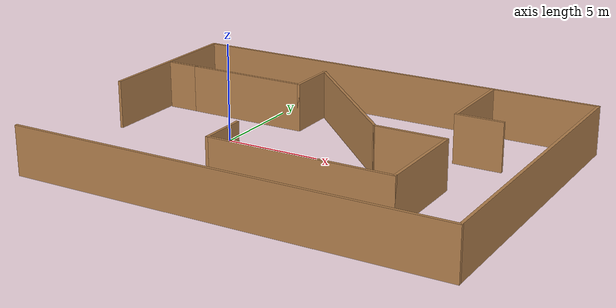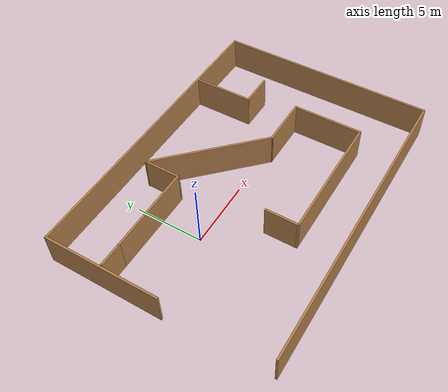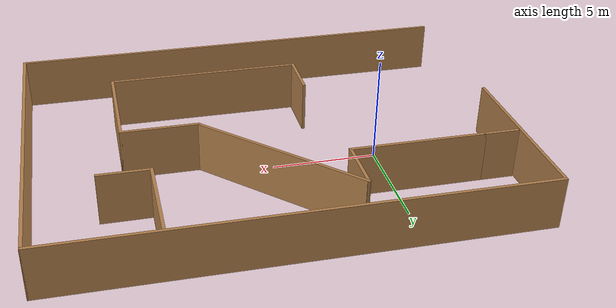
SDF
<?xml version='1.0'?>
<sdf version='1.6'>
  <model name='house'>
    <pose frame=''>5.23176 -0.79496 0 0 -0 0</pose>
    <link name='Wall_0'>
      <collision name='Wall_0_Collision'>
        <geometry>
          <box>
            <size>8.5 0.15 2.5</size>
          </box>
        </geometry>
        <pose frame=''>0 0 1.25 0 -0 0</pose>
      </collision>
      <visual name='Wall_0_Visual'>
        <pose frame=''>0 0 1.25 0 -0 0</pose>
        <geometry>
          <box>
            <size>8.5 0.15 2.5</size>
          </box>
        </geometry>
        <material>
          <script>
            <uri>file://media/materials/scripts/gazebo.material</uri>
            <name>Gazebo/Wood</name>
          </script>
          <ambient>1 1 1 1</ambient>
        </material>
        <meta>
          <layer>0</layer>
        </meta>
      </visual>
      <pose frame=''>-11.175 3.875 0 0 -0 1.5708</pose>
    </link>
    <link name='Wall_1'>
      <collision name='Wall_1_Collision'>
        <geometry>
          <box>
            <size>22.5 0.15 2.5</size>
          </box>
        </geometry>
        <pose frame=''>0 0 1.25 0 -0 0</pose>
      </collision>
      <visual name='Wall_1_Visual'>
        <pose frame=''>0 0 1.25 0 -0 0</pose>
        <geometry>
          <box>
            <size>22.5 0.15 2.5</size>
          </box>
        </geometry>
        <material>
          <script>
            <uri>file://media/materials/scripts/gazebo.material</uri>
            <name>Gazebo/Wood</name>
          </script>
          <ambient>1 1 1 1</ambient>
        </material>
        <meta>
          <layer>0</layer>
        </meta>
      </visual>
      <pose frame=''>0 8.05 0 0 -0 0</pose>
    </link>
    <link name='Wall_10'>
      <collision name='Wall_10_Collision'>
        <geometry>
          <box>
            <size>3.75 0.15 2.5</size>
          </box>
        </geometry>
        <pose frame=''>0 0 1.25 0 -0 0</pose>
      </collision>
      <visual name='Wall_10_Visual'>
        <pose frame=''>0 0 1.25 0 -0 0</pose>
        <geometry>
          <box>
            <size>3.75 0.15 2.5</size>
          </box>
        </geometry>
        <material>
          <script>
            <uri>file://media/materials/scripts/gazebo.material</uri>
            <name>Gazebo/Wood</name>
          </script>
          <ambient>1 1 1 1</ambient>
        </material>
        <meta>
          <layer>0</layer>
        </meta>
      </visual>
      <pose frame=''>5.03222 0.186003 0 0 -0 0</pose>
    </link>
    <link name='Wall_11'>
      <collision name='Wall_11_Collision'>
        <geometry>
          <box>
            <size>5.25 0.15 2.5</size>
          </box>
        </geometry>
        <pose frame=''>0 0 1.25 0 -0 0</pose>
      </collision>
      <visual name='Wall_11_Visual'>
        <pose frame=''>0 0 1.25 0 -0 0</pose>
        <geometry>
          <box>
            <size>5.25 0.15 2.5</size>
          </box>
        </geometry>
        <material>
          <script>
            <uri>file://media/materials/scripts/gazebo.material</uri>
            <name>Gazebo/Wood</name>
          </script>
          <ambient>1 1 1 1</ambient>
        </material>
        <meta>
          <layer>0</layer>
        </meta>
      </visual>
      <pose frame=''>6.83223 -2.364 0 0 0 -1.5708</pose>
    </link>
    <link name='Wall_12'>
      <collision name='Wall_12_Collision'>
        <geometry>
          <box>
            <size>9.5 0.15 2.5</size>
          </box>
        </geometry>
        <pose frame=''>0 0 1.25 0 -0 0</pose>
      </collision>
      <visual name='Wall_12_Visual'>
        <pose frame=''>0 0 1.25 0 -0 0</pose>
        <geometry>
          <box>
            <size>9.5 0.15 2.5</size>
          </box>
        </geometry>
        <material>
          <script>
            <uri>file://media/materials/scripts/gazebo.material</uri>
            <name>Gazebo/Wood</name>
          </script>
          <ambient>1 1 1 1</ambient>
        </material>
        <meta>
          <layer>0</layer>
        </meta>
      </visual>
      <pose frame=''>2.15722 -4.914 0 0 -0 3.14159</pose>
    </link>
    <link name='Wall_13'>
      <collision name='Wall_13_Collision'>
        <geometry>
          <box>
            <size>2.5 0.15 2.5</size>
          </box>
        </geometry>
        <pose frame=''>0 0 1.25 0 -0 0</pose>
      </collision>
      <visual name='Wall_13_Visual'>
        <pose frame=''>0 0 1.25 0 -0 0</pose>
        <geometry>
          <box>
            <size>2.5 0.15 2.5</size>
          </box>
        </geometry>
        <material>
          <script>
            <uri>file://media/materials/scripts/gazebo.material</uri>
            <name>Gazebo/Wood</name>
          </script>
          <ambient>1 1 1 1</ambient>
        </material>
        <meta>
          <layer>0</layer>
        </meta>
      </visual>
      <pose frame=''>-2.51778 -3.739 0 0 -0 1.5708</pose>
    </link>
    <link name='Wall_15'>
      <collision name='Wall_15_Collision'>
        <geometry>
          <box>
            <size>4.5 0.15 2.5</size>
          </box>
        </geometry>
        <pose frame=''>0 0 1.25 0 -0 0</pose>
      </collision>
      <visual name='Wall_15_Visual'>
        <pose frame=''>0 0 1.25 0 -0 0</pose>
        <geometry>
          <box>
            <size>4.5 0.15 2.5</size>
          </box>
        </geometry>
        <material>
          <script>
            <uri>file://media/materials/scripts/gazebo.material</uri>
            <name>Gazebo/Wood</name>
          </script>
          <ambient>1 1 1 1</ambient>
        </material>
        <meta>
          <layer>0</layer>
        </meta>
      </visual>
      <pose frame=''>5.76667 5.76839 0 0 0 -1.5708</pose>
    </link>
    <link name='Wall_16'>
      <collision name='Wall_16_Collision'>
        <geometry>
          <box>
            <size>2.5 0.15 2.5</size>
          </box>
        </geometry>
        <pose frame=''>0 0 1.25 0 -0 0</pose>
      </collision>
      <visual name='Wall_16_Visual'>
        <pose frame=''>0 0 1.25 0 -0 0</pose>
        <geometry>
          <box>
            <size>2.5 0.15 2.5</size>
          </box>
        </geometry>
        <material>
          <script>
            <uri>file://media/materials/scripts/gazebo.material</uri>
            <name>Gazebo/Wood</name>
          </script>
          <ambient>1 1 1 1</ambient>
        </material>
        <meta>
          <layer>0</layer>
        </meta>
      </visual>
      <pose frame=''>6.94167 3.59339 0 0 -0 0</pose>
    </link>
    <link name='Wall_2'>
      <collision name='Wall_2_Collision'>
        <geometry>
          <box>
            <size>16.25 0.15 2.5</size>
          </box>
        </geometry>
        <pose frame=''>0 0 1.25 0 -0 0</pose>
      </collision>
      <visual name='Wall_2_Visual'>
        <pose frame=''>0 0 1.25 0 -0 0</pose>
        <geometry>
          <box>
            <size>16.25 0.15 2.5</size>
          </box>
        </geometry>
        <material>
          <script>
            <uri>file://media/materials/scripts/gazebo.material</uri>
            <name>Gazebo/Wood</name>
          </script>
          <ambient>1 1 1 1</ambient>
        </material>
        <meta>
          <layer>0</layer>
        </meta>
      </visual>
      <pose frame=''>11.175 0 0 0 0 -1.5708</pose>
    </link>
    <link name='Wall_3'>
      <collision name='Wall_3_Collision'>
        <geometry>
          <box>
            <size>22.25 0.15 2.5</size>
          </box>
        </geometry>
        <pose frame=''>0 0 1.25 0 -0 0</pose>
      </collision>
      <visual name='Wall_3_Visual'>
        <pose frame=''>0 0 1.25 0 -0 0</pose>
        <geometry>
          <box>
            <size>22.25 0.15 2.5</size>
          </box>
        </geometry>
        <material>
          <script>
            <uri>file://media/materials/scripts/gazebo.material</uri>
            <name>Gazebo/Wood</name>
          </script>
          <ambient>1 1 1 1</ambient>
        </material>
        <meta>
          <layer>0</layer>
        </meta>
      </visual>
      <pose frame=''>0.125 -8.05 0 0 -0 3.14159</pose>
    </link>
    <link name='Wall_5'>
      <collision name='Wall_5_Collision'>
        <geometry>
          <box>
            <size>1.75 0.15 2.5</size>
          </box>
        </geometry>
        <pose frame=''>0 0 1.25 0 -0 0</pose>
      </collision>
      <visual name='Wall_5_Visual'>
        <pose frame=''>0 0 1.25 0 -0 0</pose>
        <geometry>
          <box>
            <size>1.75 0.15 2.5</size>
          </box>
        </geometry>
        <material>
          <script>
            <uri>file://media/materials/scripts/gazebo.material</uri>
            <name>Gazebo/Wood</name>
          </script>
          <ambient>1 1 1 1</ambient>
        </material>
        <meta>
          <layer>0</layer>
        </meta>
      </visual>
      <pose frame=''>-10.1757 3.8439 0 0 -0 3.14159</pose>
    </link>
    <link name='Wall_7'>
      <collision name='Wall_7_Collision'>
        <geometry>
          <box>
            <size>6.5 0.15 2.5</size>
          </box>
        </geometry>
        <pose frame=''>0 0 1.25 0 -0 0</pose>
      </collision>
      <visual name='Wall_7_Visual'>
        <pose frame=''>0 0 1.25 0 -0 0</pose>
        <geometry>
          <box>
            <size>6.5 0.15 2.5</size>
          </box>
        </geometry>
        <material>
          <script>
            <uri>file://media/materials/scripts/gazebo.material</uri>
            <name>Gazebo/Wood</name>
          </script>
          <ambient>1 1 1 1</ambient>
        </material>
        <meta>
          <layer>0</layer>
        </meta>
      </visual>
      <pose frame=''>-6.20067 3.8439 0 0 -0 0</pose>
    </link>
    <link name='Wall_8'>
      <collision name='Wall_8_Collision'>
        <geometry>
          <box>
            <size>2.75 0.15 2.5</size>
          </box>
        </geometry>
        <pose frame=''>0 0 1.25 0 -0 0</pose>
      </collision>
      <visual name='Wall_8_Visual'>
        <pose frame=''>0 0 1.25 0 -0 0</pose>
        <geometry>
          <box>
            <size>2.75 0.15 2.5</size>
          </box>
        </geometry>
        <material>
          <script>
            <uri>file://media/materials/scripts/gazebo.material</uri>
            <name>Gazebo/Wood</name>
          </script>
          <ambient>1 1 1 1</ambient>
        </material>
        <meta>
          <layer>0</layer>
        </meta>
      </visual>
      <pose frame=''>-3.02567 5.1439 0 0 -0 1.5708</pose>
    </link>
    <link name='Wall_9'>
      <collision name='Wall_9_Collision'>
        <geometry>
          <box>
            <size>9 0.15 2.5</size>
          </box>
        </geometry>
        <pose frame=''>0 0 1.25 0 -0 0</pose>
      </collision>
      <visual name='Wall_9_Visual'>
        <pose frame=''>0 0 1.25 0 -0 0</pose>
        <geometry>
          <box>
            <size>9 0.15 2.5</size>
          </box>
        </geometry>
        <material>
          <script>
            <uri>file://media/materials/scripts/gazebo.material</uri>
            <name>Gazebo/Wood</name>
          </script>
          <ambient>1 1 1 1</ambient>
        </material>
        <meta>
          <layer>0</layer>
        </meta>
      </visual>
      <pose frame=''>0.103277 3.31495 0 0 0 -0.785398</pose>
    </link>
    <static>1</static>
  </model>
</sdf>
